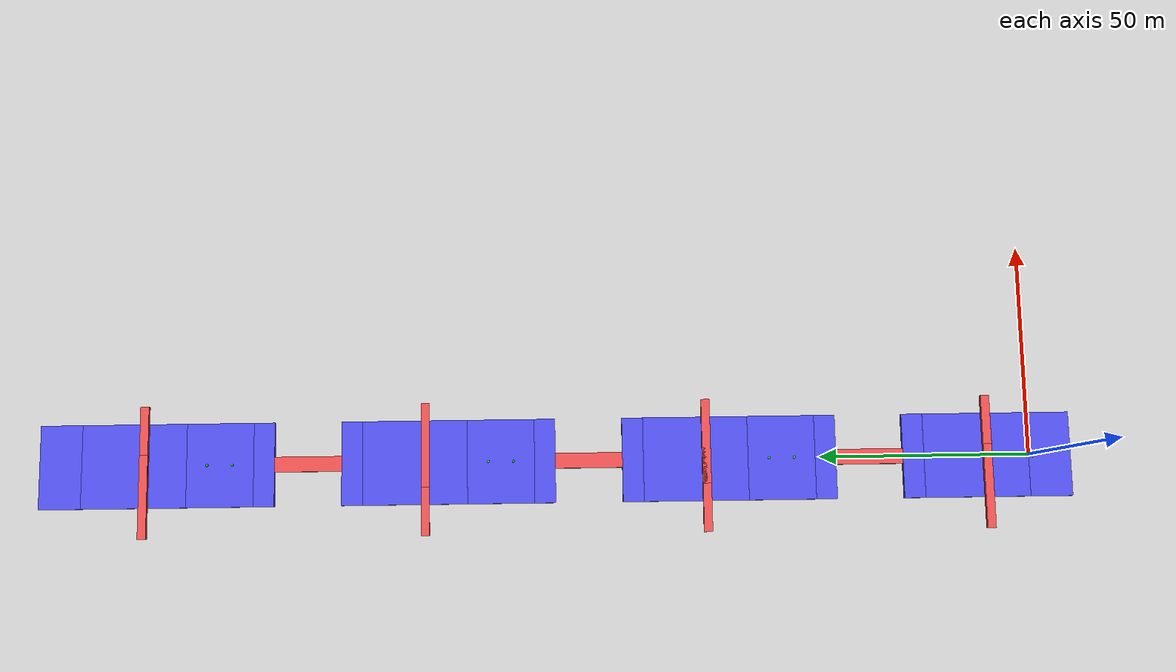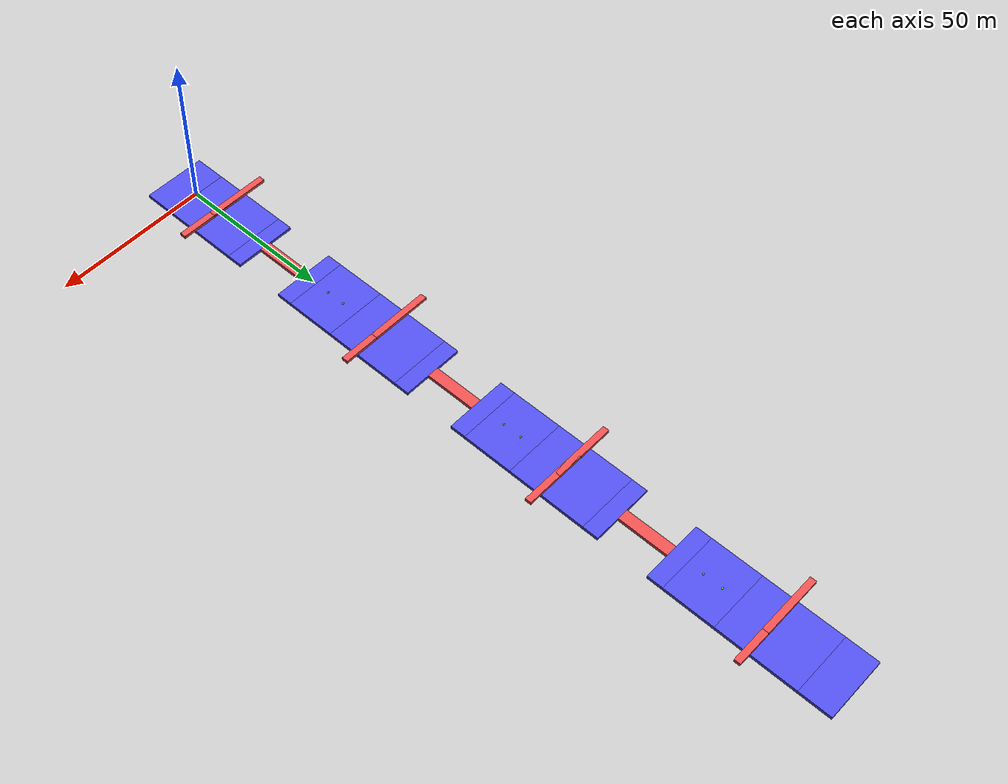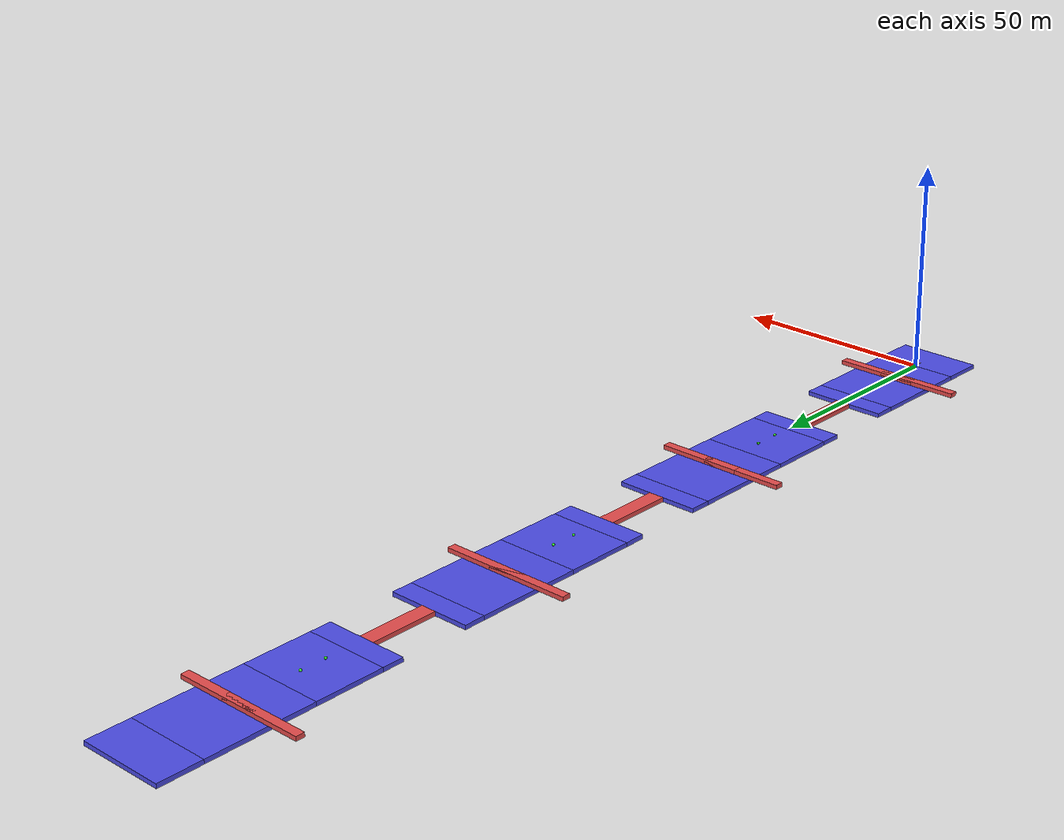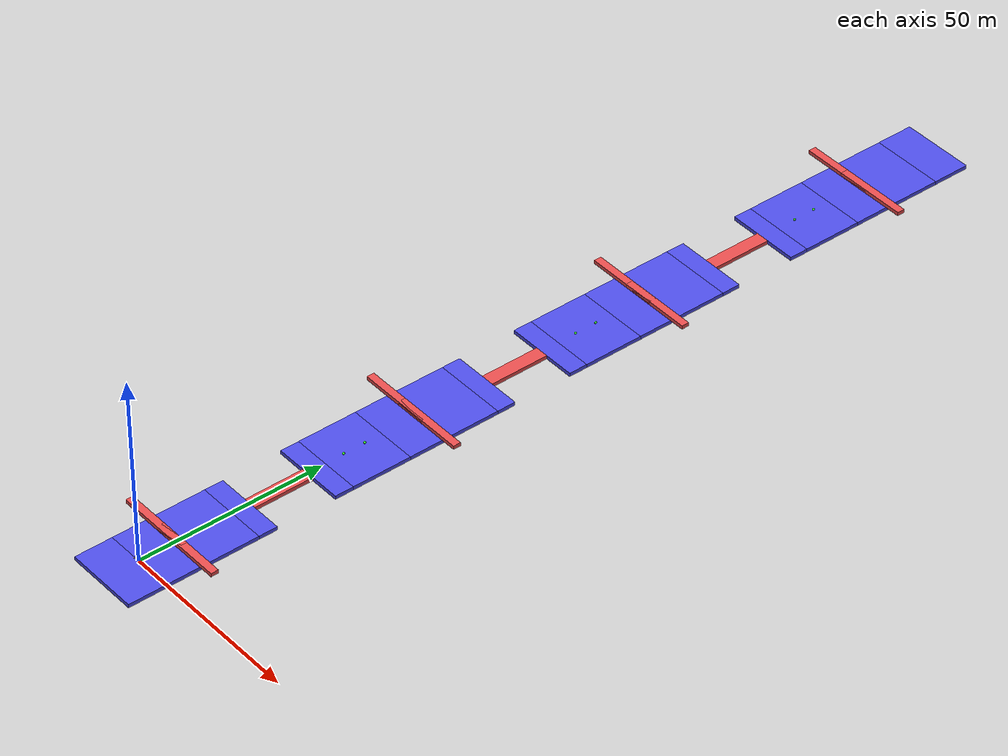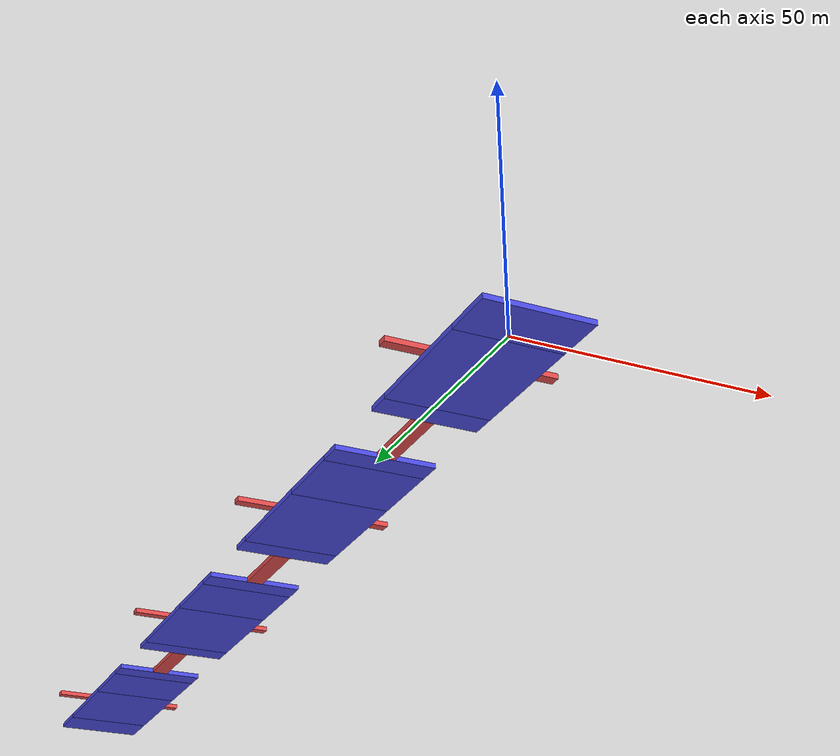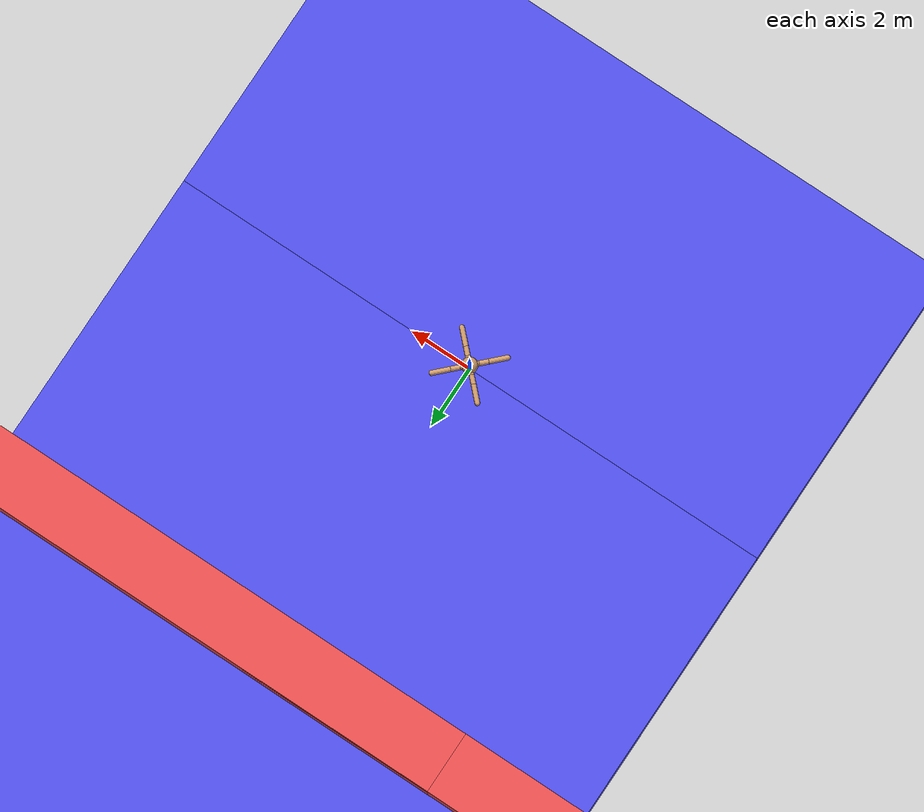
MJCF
<mujoco model="ant">
  <compiler angle="degree" coordinate="local" inertiafromgeom="true"/>
  <option integrator="RK4" timestep="0.01"/>
  <default>
    <joint armature="1" damping="1" limited="true"/>
    <geom conaffinity="1" condim="3" density="5.0" friction="0.5 0.5 0.5" margin="0.01" rgba="0.8 0.6 0.4 1"/>
  </default>
  <asset>
    <texture builtin="gradient" height="100" rgb1="1 1 1" rgb2="0 0 0" type="skybox" width="100"/>
    <texture builtin="flat" height="1278" mark="cross" markrgb="1 1 1" name="texgeom" random="0.01" rgb1="0.8 0.6 0.4" rgb2="0.8 0.6 0.4" type="cube" width="127"/>
    <texture builtin="checker" height="100" name="texplane" rgb1=".1 .2 .3" rgb2=".2 .3 .4" type="2d" width="100"/>
    <texture builtin="checker" height="100" name="texplane2" rgb1="1 1 1" rgb2=".2 .3 .4" type="2d" width="100"/>
    <material name="MatPlane" reflectance="0.5" shininess="1" specular="1" texrepeat="10 40" texture="texplane"/>
    <material name="MatPlane_2" reflectance="0.5" shininess="1" specular="1" texrepeat="5 5" texture="texplane2"/>
    <material name="geom" texture="texgeom" texuniform="true"/>
  </asset>
  <worldbody>
    <!-- test object -->

    <body name="agent_torso" pos="0 0 0.75">
      <camera name="track" mode="trackcom" pos="0 -3 0.3" xyaxes="1 0 0 0 0 1"/>
      <geom name="agent_torso_geom" pos="0 0 0" size="0.25" type="sphere"/>
      <joint armature="0" damping="0" limited="false" margin="0.01" name="root" pos="0 0 0" type="free"/>
      <body name="agent_front_left_leg" pos="0 0 0">
        <geom fromto="0.0 0.0 0.0 0.2 0.2 0.0" name="aux_1_geom" size="0.08" type="capsule"/>
        <body name="aux_1" pos="0.2 0.2 0">
          <joint axis="0 0 1" name="hip_1" pos="0.0 0.0 0.0" range="-30 30" type="hinge"/>
          <geom fromto="0.0 0.0 0.0 0.2 0.2 0.0" name="agent_left_leg_geom" size="0.08" type="capsule"/>
          <body pos="0.2 0.2 0">
            <joint axis="-1 1 0" name="ankle_1" pos="0.0 0.0 0.0" range="30 70" type="hinge"/>
            <geom fromto="0.0 0.0 0.0 0.4 0.4 0.0" name="agent_left_ankle_geom" size="0.08" type="capsule"/>
          </body>
        </body>
      </body>
      <body name="agent_front_right_leg" pos="0 0 0">
        <geom fromto="0.0 0.0 0.0 -0.2 0.2 0.0" name="aux_2_geom" size="0.08" type="capsule"/>
        <body name="aux_2" pos="-0.2 0.2 0">
          <joint axis="0 0 1" name="hip_2" pos="0.0 0.0 0.0" range="-30 30" type="hinge"/>
          <geom fromto="0.0 0.0 0.0 -0.2 0.2 0.0" name="agent_right_leg_geom" size="0.08" type="capsule"/>
          <body pos="-0.2 0.2 0">
            <joint axis="1 1 0" name="ankle_2" pos="0.0 0.0 0.0" range="-70 -30" type="hinge"/>
            <geom fromto="0.0 0.0 0.0 -0.4 0.4 0.0" name="agent_right_ankle_geom" size="0.08" type="capsule"/>
          </body>
        </body>
      </body>
      <body name="agent_back_leg" pos="0 0 0">
        <geom fromto="0.0 0.0 0.0 -0.2 -0.2 0.0" name="aux_3_geom" size="0.08" type="capsule"/>
        <body name="aux_3" pos="-0.2 -0.2 0">
          <joint axis="0 0 1" name="hip_3" pos="0.0 0.0 0.0" range="-30 30" type="hinge"/>
          <geom fromto="0.0 0.0 0.0 -0.2 -0.2 0.0" name="agent_back_leg_geom" size="0.08" type="capsule"/>
          <body pos="-0.2 -0.2 0">
            <joint axis="-1 1 0" name="ankle_3" pos="0.0 0.0 0.0" range="-70 -30" type="hinge"/>
            <geom fromto="0.0 0.0 0.0 -0.4 -0.4 0.0" name="agent_third_ankle_geom" size="0.08" type="capsule"/>
          </body>
        </body>
      </body>
      <body name="agent_right_back_leg" pos="0 0 0">
        <geom fromto="0.0 0.0 0.0 0.2 -0.2 0.0" name="aux_4_geom" size="0.08" type="capsule"/>
        <body name="aux_4" pos="0.2 -0.2 0">
          <joint axis="0 0 1" name="hip_4" pos="0.0 0.0 0.0" range="-30 30" type="hinge"/>
          <geom fromto="0.0 0.0 0.0 0.2 -0.2 0.0" name="agent_rightback_leg_geom" size="0.08" type="capsule"/>
          <body pos="0.2 -0.2 0">
            <joint axis="1 1 0" name="ankle_4" pos="0.0 0.0 0.0" range="30 70" type="hinge"/>
            <geom fromto="0.0 0.0 0.0 0.4 -0.4 0.0" name="agent_fourth_ankle_geom" size="0.08" type="capsule"/>
          </body>
        </body>
      </body>
    </body>
    <geom name="curbleft0" pos="-7.35 10 0.5" conaffinity="1" rgba="0.9 0.3 0.3 1" size="10 1 0.5" type="box"/>
    <geom name="curbright0" pos="4.15 10 0.5" conaffinity="1" rgba="0.9 0.3 0.3 1" size="10 1 0.5" type="box"/>
    <geom name="curbleft1" pos="-7.35 77 0.5" conaffinity="1" rgba="0.9 0.3 0.3 1" size="10 1 0.5" type="box"/>
    <geom name="curbright1" pos="4.15 77 0.5" conaffinity="1" rgba="0.9 0.3 0.3 1" size="10  1 0.5" type="box"/>
    <geom name="curbleft2" pos="-7.35 144 0.5" conaffinity="1" rgba="0.9 0.3 0.3 1" size="10 1 0.5" type="box"/>
    <geom name="curbright2" pos="4.15 144 0.5" conaffinity="1" rgba="0.9 0.3 0.3 1" size="10 1 0.5" type="box"/>
    <geom name="curbleft3" pos="-7.35 211 0.5" conaffinity="1" rgba="0.9 0.3 0.3 1" size="10 1 0.5" type="box"/>
    <geom name="curbright3" pos="4.15 211 0.5" conaffinity="1" rgba="0.9 0.3 0.3 1" size="10 1 0.5" type="box"/>

    <light cutoff="100" diffuse="1 1 1" dir="-0 0 -1.3" directional="true" exponent="1" pos="0 0 1.3" specular=".1 .1 .1"/>
    <geom name="startplane" pos="0 -5 -0.5" conaffinity="1" rgba="0.3 0.3 0.9 1" friction="1 1 1" size="10 5 0.5" type="box" priority = "3"/>

    <geom name="antgoal0_plane" pos="0 12.5 -0.5" conaffinity="1" rgba="0.3 0.3 0.9 1" friction="1 1 1" size="10 12.5 0.5" type="box" priority = "3"/>
    <geom name="antbridge0_frontplane" pos="0 27.5 -0.5" conaffinity="1" rgba="0.3 0.3 0.9 1" friction="1 1 1" size="10 2.5 0.5" type="box" priority = "3"/>
    <geom name="antbridge0_rearplane" pos="0 48.5 -0.5" conaffinity="1" rgba="0.3 0.3 0.9 1" friction="1 1 1" size="10 2.5 0.5" type="box" priority = "3"/>
    <geom name="antgather0_plane" pos="0 59 -0.5" conaffinity="1" rgba="0.3 0.3 0.9 1" friction="1 1 1" size="10 8 0.5" type="box" priority = "3"/>

    <geom name="antgoal1_plane" pos="0 79.5 -0.5" conaffinity="1" rgba="0.3 0.3 0.9 1" friction="1 1 1" size="10 12.5 0.5" type="box" priority = "3"/>
    <geom name="antbridge1_frontplane" pos="0 94.5 -0.5" conaffinity="1" rgba="0.3 0.3 0.9 1" friction="1 1 1" size="10 2.5 0.5" type="box" priority = "3"/>
    <geom name="antbridge1_rearplane" pos="0 115.5 -0.5" conaffinity="1" rgba="0.3 0.3 0.9 1" friction="1 1 1" size="10 2.5 0.5" type="box" priority = "3"/>
    <geom name="antgather1_plane" pos="0 126 -0.5" conaffinity="1" rgba="0.3 0.3 0.9 1" friction="1 1 1" size="10 8 0.5" type="box" priority = "3"/>

    <geom name="antgoal2_plane" pos="0 146.5 -0.5" conaffinity="1" rgba="0.3 0.3 0.9 1" friction="1 1 1" size="10 12.5 0.5" type="box" priority = "3"/>
    <geom name="antbridge2_frontplane" pos="0 161.5 -0.5" conaffinity="1" rgba="0.3 0.3 0.9 1" friction="1 1 1" size="10 2.5 0.5" type="box" priority = "3"/>
    <geom name="antbridge2_rearplane" pos="0 182.5 -0.5" conaffinity="1" rgba="0.3 0.3 0.9 1" friction="1 1 1" size="10 2.5 0.5" type="box" priority = "3"/>
    <geom name="antgather2_plane" pos="0 193 -0.5" conaffinity="1" rgba="0.3 0.3 0.9 1" friction="1 1 1" size="10 8 0.5" type="box" priority = "3"/>

    <geom name="antgoal3_plane" pos="0 213.5 -0.5" conaffinity="1" rgba="0.3 0.3 0.9 1" friction="1 1 1" size="10 12.5 0.5" type="box" priority = "3"/>

    <geom name="finishplane" pos="0 231 -0.5" conaffinity="1" rgba="0.3 0.3 0.9 1" friction="1 1 1" size="10 5 0.5" type="box" priority = "3"/>

    <geom name="bridge0" pos="0 38 -0.5" conaffinity="1" rgba="0.9 0.3 0.3 1" size="1.8 8 0.5" type="box" />
    <geom name="bridge1" pos="0 105 -0.5" conaffinity="1" rgba="0.9 0.3 0.3 1" size="1.8 8 0.5" type="box" />
    <geom name="bridge2" pos="0 172 -0.5" conaffinity="1" rgba="0.9 0.3 0.3 1" size="1.8 8 0.5" type="box" />

    <geom name="coin_geom1_0" pos= "0 56 0.3" conaffinity="0" contype="0" type="sphere" size=".3" condim="3"  rgba="0.2 0.9 0.2 1" />
    <geom name="coin_geom2_0" conaffinity="0" contype="0" type="sphere" size=".3" condim="3"  pos="0 62 0.3" rgba="0.2 0.9 0.2 1" />
    <geom name="coin_geom1_1" pos= "0 123 0.3" conaffinity="0" contype="0" type="sphere" size=".3" condim="3"  rgba="0.2 0.9 0.2 1" />
    <geom name="coin_geom2_1" conaffinity="0" contype="0" type="sphere" size=".3" condim="3"  pos="0 129 0.3" rgba="0.2 0.9 0.2 1" />
    <geom name="coin_geom1_2" pos= "0 190 0.3" conaffinity="0" contype="0" type="sphere" size=".3" condim="3"  rgba="0.2 0.9 0.2 1" />
    <geom name="coin_geom2_2" conaffinity="0" contype="0" type="sphere" size=".3" condim="3"  pos="0 196 0.3" rgba="0.2 0.9 0.2 1" />
  </worldbody>
  <actuator>
    <motor ctrllimited="true" ctrlrange="-1.0 1.0" joint="hip_4" gear="150"/>
    <motor ctrllimited="true" ctrlrange="-1.0 1.0" joint="ankle_4" gear="150"/>
    <motor ctrllimited="true" ctrlrange="-1.0 1.0" joint="hip_1" gear="150"/>
    <motor ctrllimited="true" ctrlrange="-1.0 1.0" joint="ankle_1" gear="150"/>
    <motor ctrllimited="true" ctrlrange="-1.0 1.0" joint="hip_2" gear="150"/>
    <motor ctrllimited="true" ctrlrange="-1.0 1.0" joint="ankle_2" gear="150"/>
    <motor ctrllimited="true" ctrlrange="-1.0 1.0" joint="hip_3" gear="150"/>
    <motor ctrllimited="true" ctrlrange="-1.0 1.0" joint="ankle_3" gear="150"/>
  </actuator>
</mujoco>
